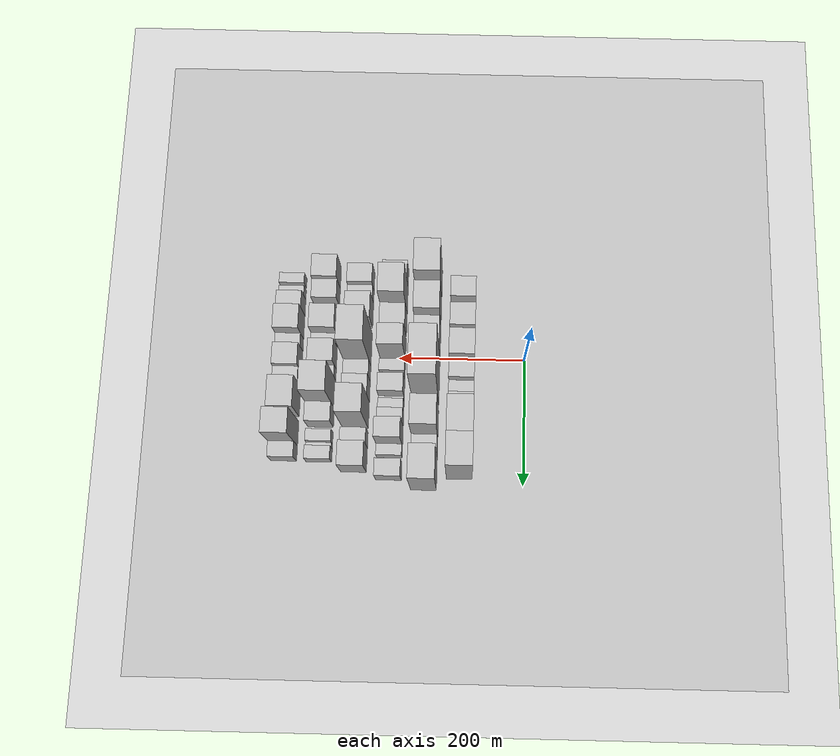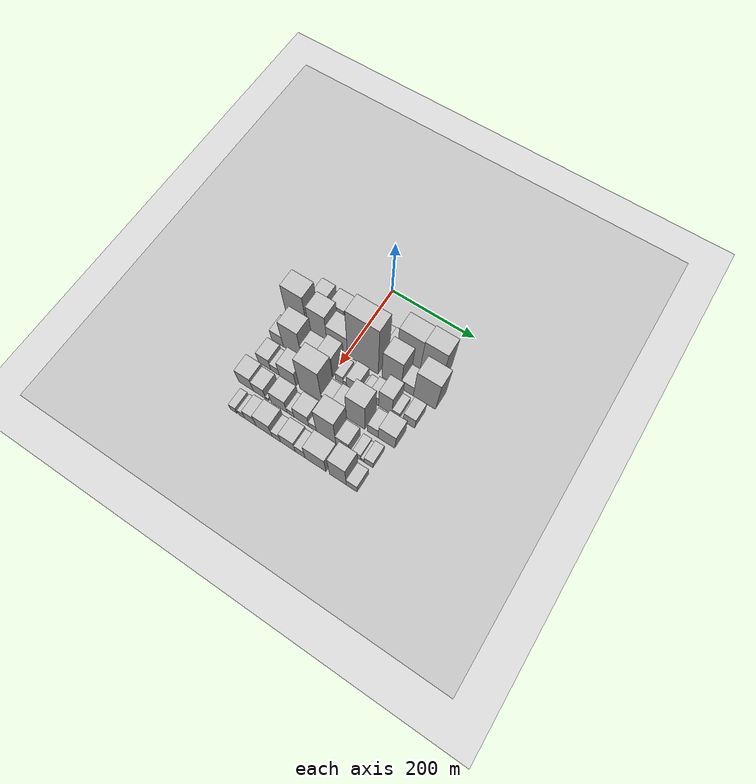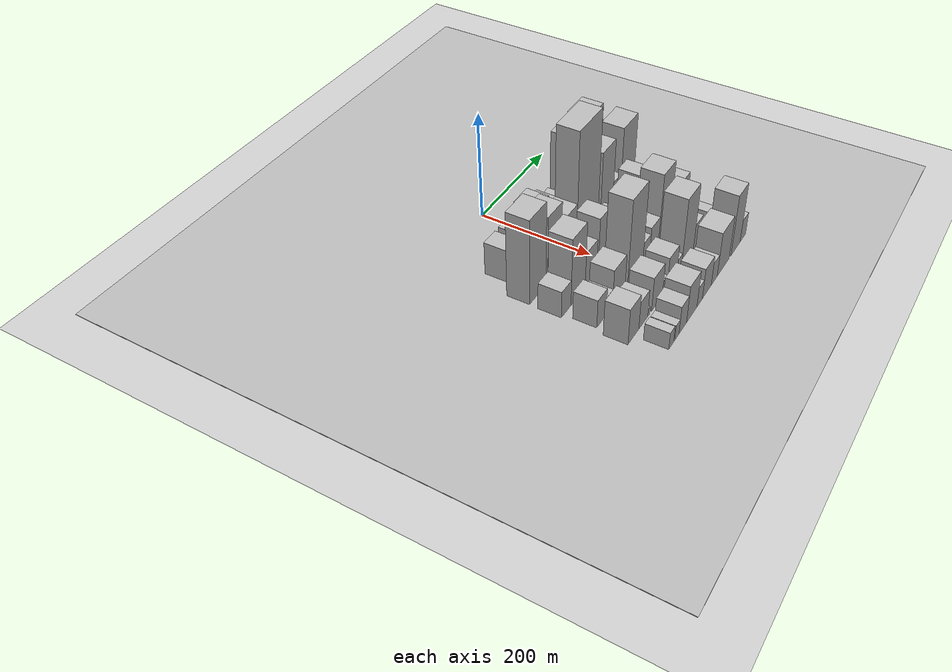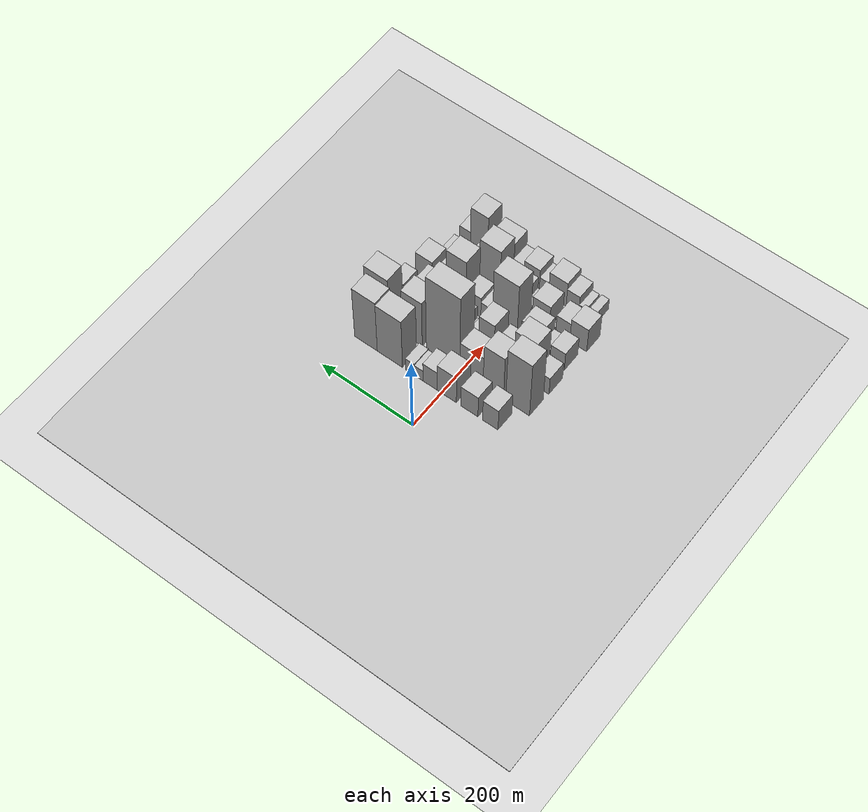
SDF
<sdf version="1.6">
 <world name="default">
  <include><name>ground_plane_1</name><uri>model://HANNAS_ground_plane</uri></include>
  <include>
   <name>ground_plane_2</name>
   <uri>model://HANNAS_ground_plane</uri>
   <pose>100 0 0  0 0 0</pose>
  </include>
  <model name="building_19">
   <static>1</static>
   <pose>100.0000 -104.4005 0 0.000000 0.000000 0.000000</pose>
   <link name="link">
    <pose>0 0 31.50 0 0 0</pose>
    <collision name="collision"><geometry><box><size>40.0000 32.8574 63.0000</size></box></geometry></collision>
    <visual name="visual">
     <cast_shadows>0</cast_shadows>
     <geometry><box><size>40.0000 32.8574 63.0000</size></box></geometry>
     <material>
      <script>
       <uri>model://HANNAS_wall/materials/scripts</uri>
       <uri>model://HANNAS_wall/materials/textures</uri>
       <name>vrc/HANNAS_wall</name>
      </script>
     </material>
    </visual>
   </link>
  </model>
  <model name="building_20">
   <static>1</static>
   <pose>100.0000 -59.7852 0 0.000000 0.000000 0.000000</pose>
   <link name="link">
    <pose>0 0 31.50 0 0 0</pose>
    <collision name="collision"><geometry><box><size>40.0000 36.3732 63.0000</size></box></geometry></collision>
    <visual name="visual">
     <cast_shadows>0</cast_shadows>
     <geometry><box><size>40.0000 36.3732 63.0000</size></box></geometry>
     <material>
      <script>
       <uri>model://HANNAS_wall/materials/scripts</uri>
       <uri>model://HANNAS_wall/materials/textures</uri>
       <name>vrc/HANNAS_wall</name>
      </script>
     </material>
    </visual>
   </link>
  </model>
  <model name="building_21">
   <static>1</static>
   <pose>100.0000 -11.1087 0 0.000000 0.000000 0.000000</pose>
   <link name="link">
    <pose>0 0 40.50 0 0 0</pose>
    <collision name="collision"><geometry><box><size>40.0000 40.9799 81.0000</size></box></geometry></collision>
    <visual name="visual">
     <cast_shadows>0</cast_shadows>
     <geometry><box><size>40.0000 40.9799 81.0000</size></box></geometry>
     <material>
      <script>
       <uri>model://HANNAS_wall/materials/scripts</uri>
       <uri>model://HANNAS_wall/materials/textures</uri>
       <name>vrc/HANNAS_wall</name>
      </script>
     </material>
    </visual>
   </link>
  </model>
  <model name="building_22">
   <static>1</static>
   <pose>100.0000 24.9783 0 0.000000 0.000000 0.000000</pose>
   <link name="link">
    <pose>0 0 28.50 0 0 0</pose>
    <collision name="collision"><geometry><box><size>40.0000 31.1941 57.0000</size></box></geometry></collision>
    <visual name="visual">
     <cast_shadows>0</cast_shadows>
     <geometry><box><size>40.0000 31.1941 57.0000</size></box></geometry>
     <material>
      <script>
       <uri>model://HANNAS_wall/materials/scripts</uri>
       <uri>model://HANNAS_wall/materials/textures</uri>
       <name>vrc/HANNAS_wall</name>
      </script>
     </material>
    </visual>
   </link>
  </model>
  <model name="building_23">
   <static>1</static>
   <pose>100.0000 49.8921 0 0.000000 0.000000 0.000000</pose>
   <link name="link">
    <pose>0 0 16.50 0 0 0</pose>
    <collision name="collision"><geometry><box><size>40.0000 18.6336 33.0000</size></box></geometry></collision>
    <visual name="visual">
     <cast_shadows>0</cast_shadows>
     <geometry><box><size>40.0000 18.6336 33.0000</size></box></geometry>
     <material>
      <script>
       <uri>model://HANNAS_wall/materials/scripts</uri>
       <uri>model://HANNAS_wall/materials/textures</uri>
       <name>vrc/HANNAS_wall</name>
      </script>
     </material>
    </visual>
   </link>
  </model>
  <model name="building_24">
   <static>1</static>
   <pose>100.0000 68.9714 0 0.000000 0.000000 0.000000</pose>
   <link name="link">
    <pose>0 0 18.00 0 0 0</pose>
    <collision name="collision"><geometry><box><size>40.0000 19.5249 36.0000</size></box></geometry></collision>
    <visual name="visual">
     <cast_shadows>0</cast_shadows>
     <geometry><box><size>40.0000 19.5249 36.0000</size></box></geometry>
     <material>
      <script>
       <uri>model://HANNAS_wall/materials/scripts</uri>
       <uri>model://HANNAS_wall/materials/textures</uri>
       <name>vrc/HANNAS_wall</name>
      </script>
     </material>
    </visual>
   </link>
  </model>
  <model name="building_25">
   <static>1</static>
   <pose>100.0000 113.5776 0 0.000000 0.000000 0.000000</pose>
   <link name="link">
    <pose>0 0 72.00 0 0 0</pose>
    <collision name="collision"><geometry><box><size>40.0000 55.6874 144.0000</size></box></geometry></collision>
    <visual name="visual">
     <cast_shadows>0</cast_shadows>
     <geometry><box><size>40.0000 55.6874 144.0000</size></box></geometry>
     <material>
      <script>
       <uri>model://HANNAS_wall/materials/scripts</uri>
       <uri>model://HANNAS_wall/materials/textures</uri>
       <name>vrc/HANNAS_wall</name>
      </script>
     </material>
    </visual>
   </link>
  </model>
  <model name="building_26">
   <static>1</static>
   <pose>100.0000 166.6663 0 0.000000 0.000000 0.000000</pose>
   <link name="link">
    <pose>0 0 75.00 0 0 0</pose>
    <collision name="collision"><geometry><box><size>40.0000 50.4901 150.0000</size></box></geometry></collision>
    <visual name="visual">
     <cast_shadows>0</cast_shadows>
     <geometry><box><size>40.0000 50.4901 150.0000</size></box></geometry>
     <material>
      <script>
       <uri>model://HANNAS_wall/materials/scripts</uri>
       <uri>model://HANNAS_wall/materials/textures</uri>
       <name>vrc/HANNAS_wall</name>
      </script>
     </material>
    </visual>
   </link>
  </model>
  <model name="building_67">
   <static>1</static>
   <pose>155.0000 -121.8939 0 0.000000 0.000000 0.000000</pose>
   <link name="link">
    <pose>0 0 81.00 0 0 0</pose>
    <collision name="collision"><geometry><box><size>40.0000 50.4735 162.0000</size></box></geometry></collision>
    <visual name="visual">
     <cast_shadows>0</cast_shadows>
     <geometry><box><size>40.0000 50.4735 162.0000</size></box></geometry>
     <material>
      <script>
       <uri>model://HANNAS_wall/materials/scripts</uri>
       <uri>model://HANNAS_wall/materials/textures</uri>
       <name>vrc/HANNAS_wall</name>
      </script>
     </material>
    </visual>
   </link>
  </model>
  <model name="building_68">
   <static>1</static>
   <pose>155.0000 -69.8551 0 0.000000 0.000000 0.000000</pose>
   <link name="link">
    <pose>0 0 64.50 0 0 0</pose>
    <collision name="collision"><geometry><box><size>40.0000 43.6041 129.0000</size></box></geometry></collision>
    <visual name="visual">
     <cast_shadows>0</cast_shadows>
     <geometry><box><size>40.0000 43.6041 129.0000</size></box></geometry>
     <material>
      <script>
       <uri>model://HANNAS_wall/materials/scripts</uri>
       <uri>model://HANNAS_wall/materials/textures</uri>
       <name>vrc/HANNAS_wall</name>
      </script>
     </material>
    </visual>
   </link>
  </model>
  <model name="building_69">
   <static>1</static>
   <pose>155.0000 -23.0017 0 0.000000 0.000000 0.000000</pose>
   <link name="link">
    <pose>0 0 45.00 0 0 0</pose>
    <collision name="collision"><geometry><box><size>40.0000 50.1027 90.0000</size></box></geometry></collision>
    <visual name="visual">
     <cast_shadows>0</cast_shadows>
     <geometry><box><size>40.0000 50.1027 90.0000</size></box></geometry>
     <material>
      <script>
       <uri>model://HANNAS_wall/materials/scripts</uri>
       <uri>model://HANNAS_wall/materials/textures</uri>
       <name>vrc/HANNAS_wall</name>
      </script>
     </material>
    </visual>
   </link>
  </model>
  <model name="building_70">
   <static>1</static>
   <pose>155.0000 38.9097 0 0.000000 0.000000 0.000000</pose>
   <link name="link">
    <pose>0 0 112.50 0 0 0</pose>
    <collision name="collision"><geometry><box><size>40.0000 73.7201 225.0000</size></box></geometry></collision>
    <visual name="visual">
     <cast_shadows>0</cast_shadows>
     <geometry><box><size>40.0000 73.7201 225.0000</size></box></geometry>
     <material>
      <script>
       <uri>model://HANNAS_wall/materials/scripts</uri>
       <uri>model://HANNAS_wall/materials/textures</uri>
       <name>vrc/HANNAS_wall</name>
      </script>
     </material>
    </visual>
   </link>
  </model>
  <model name="building_71">
   <static>1</static>
   <pose>155.0000 107.3649 0 0.000000 0.000000 0.000000</pose>
   <link name="link">
    <pose>0 0 67.50 0 0 0</pose>
    <collision name="collision"><geometry><box><size>40.0000 45.1902 135.0000</size></box></geometry></collision>
    <visual name="visual">
     <cast_shadows>0</cast_shadows>
     <geometry><box><size>40.0000 45.1902 135.0000</size></box></geometry>
     <material>
      <script>
       <uri>model://HANNAS_wall/materials/scripts</uri>
       <uri>model://HANNAS_wall/materials/textures</uri>
       <name>vrc/HANNAS_wall</name>
      </script>
     </material>
    </visual>
   </link>
  </model>
  <model name="building_72">
   <static>1</static>
   <pose>155.0000 144.3162 0 0.000000 0.000000 0.000000</pose>
   <link name="link">
    <pose>0 0 24.00 0 0 0</pose>
    <collision name="collision"><geometry><box><size>40.0000 28.7124 48.0000</size></box></geometry></collision>
    <visual name="visual">
     <cast_shadows>0</cast_shadows>
     <geometry><box><size>40.0000 28.7124 48.0000</size></box></geometry>
     <material>
      <script>
       <uri>model://HANNAS_wall/materials/scripts</uri>
       <uri>model://HANNAS_wall/materials/textures</uri>
       <name>vrc/HANNAS_wall</name>
      </script>
     </material>
    </visual>
   </link>
  </model>
  <model name="building_73">
   <static>1</static>
   <pose>155.0000 184.5461 0 0.000000 0.000000 0.000000</pose>
   <link name="link">
    <pose>0 0 69.00 0 0 0</pose>
    <collision name="collision"><geometry><box><size>40.0000 51.7474 138.0000</size></box></geometry></collision>
    <visual name="visual">
     <cast_shadows>0</cast_shadows>
     <geometry><box><size>40.0000 51.7474 138.0000</size></box></geometry>
     <material>
      <script>
       <uri>model://HANNAS_wall/materials/scripts</uri>
       <uri>model://HANNAS_wall/materials/textures</uri>
       <name>vrc/HANNAS_wall</name>
      </script>
     </material>
    </visual>
   </link>
  </model>
  <model name="building_114">
   <static>1</static>
   <pose>210.0000 -133.5128 0 0.000000 0.000000 0.000000</pose>
   <link name="link">
    <pose>0 0 25.50 0 0 0</pose>
    <collision name="collision"><geometry><box><size>40.0000 29.8288 51.0000</size></box></geometry></collision>
    <visual name="visual">
     <cast_shadows>0</cast_shadows>
     <geometry><box><size>40.0000 29.8288 51.0000</size></box></geometry>
     <material>
      <script>
       <uri>model://HANNAS_wall/materials/scripts</uri>
       <uri>model://HANNAS_wall/materials/textures</uri>
       <name>vrc/HANNAS_wall</name>
      </script>
     </material>
    </visual>
   </link>
  </model>
  <model name="building_115">
   <static>1</static>
   <pose>210.0000 -95.7579 0 0.000000 0.000000 0.000000</pose>
   <link name="link">
    <pose>0 0 64.50 0 0 0</pose>
    <collision name="collision"><geometry><box><size>40.0000 45.6809 129.0000</size></box></geometry></collision>
    <visual name="visual">
     <cast_shadows>0</cast_shadows>
     <geometry><box><size>40.0000 45.6809 129.0000</size></box></geometry>
     <material>
      <script>
       <uri>model://HANNAS_wall/materials/scripts</uri>
       <uri>model://HANNAS_wall/materials/textures</uri>
       <name>vrc/HANNAS_wall</name>
      </script>
     </material>
    </visual>
   </link>
  </model>
  <model name="building_116">
   <static>1</static>
   <pose>210.0000 -54.0344 0 0.000000 0.000000 0.000000</pose>
   <link name="link">
    <pose>0 0 34.50 0 0 0</pose>
    <collision name="collision"><geometry><box><size>40.0000 37.7660 69.0000</size></box></geometry></collision>
    <visual name="visual">
     <cast_shadows>0</cast_shadows>
     <geometry><box><size>40.0000 37.7660 69.0000</size></box></geometry>
     <material>
      <script>
       <uri>model://HANNAS_wall/materials/scripts</uri>
       <uri>model://HANNAS_wall/materials/textures</uri>
       <name>vrc/HANNAS_wall</name>
      </script>
     </material>
    </visual>
   </link>
  </model>
  <model name="building_117">
   <static>1</static>
   <pose>210.0000 -13.5442 0 0.000000 0.000000 0.000000</pose>
   <link name="link">
    <pose>0 0 52.50 0 0 0</pose>
    <collision name="collision"><geometry><box><size>40.0000 33.2145 105.0000</size></box></geometry></collision>
    <visual name="visual">
     <cast_shadows>0</cast_shadows>
     <geometry><box><size>40.0000 33.2145 105.0000</size></box></geometry>
     <material>
      <script>
       <uri>model://HANNAS_wall/materials/scripts</uri>
       <uri>model://HANNAS_wall/materials/textures</uri>
       <name>vrc/HANNAS_wall</name>
      </script>
     </material>
    </visual>
   </link>
  </model>
  <model name="building_118">
   <static>1</static>
   <pose>210.0000 18.3803 0 0.000000 0.000000 0.000000</pose>
   <link name="link">
    <pose>0 0 18.00 0 0 0</pose>
    <collision name="collision"><geometry><box><size>40.0000 18.6345 36.0000</size></box></geometry></collision>
    <visual name="visual">
     <cast_shadows>0</cast_shadows>
     <geometry><box><size>40.0000 18.6345 36.0000</size></box></geometry>
     <material>
      <script>
       <uri>model://HANNAS_wall/materials/scripts</uri>
       <uri>model://HANNAS_wall/materials/textures</uri>
       <name>vrc/HANNAS_wall</name>
      </script>
     </material>
    </visual>
   </link>
  </model>
  <model name="building_119">
   <static>1</static>
   <pose>210.0000 31.9395 0 0.000000 0.000000 0.000000</pose>
   <link name="link">
    <pose>0 0 10.50 0 0 0</pose>
    <collision name="collision"><geometry><box><size>40.0000 8.4840 21.0000</size></box></geometry></collision>
    <visual name="visual">
     <cast_shadows>0</cast_shadows>
     <geometry><box><size>40.0000 8.4840 21.0000</size></box></geometry>
     <material>
      <script>
       <uri>model://HANNAS_wall/materials/scripts</uri>
       <uri>model://HANNAS_wall/materials/textures</uri>
       <name>vrc/HANNAS_wall</name>
      </script>
     </material>
    </visual>
   </link>
  </model>
  <model name="building_120">
   <static>1</static>
   <pose>210.0000 50.5265 0 0.000000 0.000000 0.000000</pose>
   <link name="link">
    <pose>0 0 28.50 0 0 0</pose>
    <collision name="collision"><geometry><box><size>40.0000 28.6899 57.0000</size></box></geometry></collision>
    <visual name="visual">
     <cast_shadows>0</cast_shadows>
     <geometry><box><size>40.0000 28.6899 57.0000</size></box></geometry>
     <material>
      <script>
       <uri>model://HANNAS_wall/materials/scripts</uri>
       <uri>model://HANNAS_wall/materials/textures</uri>
       <name>vrc/HANNAS_wall</name>
      </script>
     </material>
    </visual>
   </link>
  </model>
  <model name="building_121">
   <static>1</static>
   <pose>210.0000 67.8872 0 0.000000 0.000000 0.000000</pose>
   <link name="link">
    <pose>0 0 7.50 0 0 0</pose>
    <collision name="collision"><geometry><box><size>40.0000 6.0315 15.0000</size></box></geometry></collision>
    <visual name="visual">
     <cast_shadows>0</cast_shadows>
     <geometry><box><size>40.0000 6.0315 15.0000</size></box></geometry>
     <material>
      <script>
       <uri>model://HANNAS_wall/materials/scripts</uri>
       <uri>model://HANNAS_wall/materials/textures</uri>
       <name>vrc/HANNAS_wall</name>
      </script>
     </material>
    </visual>
   </link>
  </model>
  <model name="building_122">
   <static>1</static>
   <pose>210.0000 79.7839 0 0.000000 0.000000 0.000000</pose>
   <link name="link">
    <pose>0 0 15.00 0 0 0</pose>
    <collision name="collision"><geometry><box><size>40.0000 17.7620 30.0000</size></box></geometry></collision>
    <visual name="visual">
     <cast_shadows>0</cast_shadows>
     <geometry><box><size>40.0000 17.7620 30.0000</size></box></geometry>
     <material>
      <script>
       <uri>model://HANNAS_wall/materials/scripts</uri>
       <uri>model://HANNAS_wall/materials/textures</uri>
       <name>vrc/HANNAS_wall</name>
      </script>
     </material>
    </visual>
   </link>
  </model>
  <model name="building_123">
   <static>1</static>
   <pose>210.0000 100.3400 0 0.000000 0.000000 0.000000</pose>
   <link name="link">
    <pose>0 0 22.50 0 0 0</pose>
    <collision name="collision"><geometry><box><size>40.0000 23.3502 45.0000</size></box></geometry></collision>
    <visual name="visual">
     <cast_shadows>0</cast_shadows>
     <geometry><box><size>40.0000 23.3502 45.0000</size></box></geometry>
     <material>
      <script>
       <uri>model://HANNAS_wall/materials/scripts</uri>
       <uri>model://HANNAS_wall/materials/textures</uri>
       <name>vrc/HANNAS_wall</name>
      </script>
     </material>
    </visual>
   </link>
  </model>
  <model name="building_124">
   <static>1</static>
   <pose>210.0000 127.5048 0 0.000000 0.000000 0.000000</pose>
   <link name="link">
    <pose>0 0 46.50 0 0 0</pose>
    <collision name="collision"><geometry><box><size>40.0000 30.9794 93.0000</size></box></geometry></collision>
    <visual name="visual">
     <cast_shadows>0</cast_shadows>
     <geometry><box><size>40.0000 30.9794 93.0000</size></box></geometry>
     <material>
      <script>
       <uri>model://HANNAS_wall/materials/scripts</uri>
       <uri>model://HANNAS_wall/materials/textures</uri>
       <name>vrc/HANNAS_wall</name>
      </script>
     </material>
    </visual>
   </link>
  </model>
  <model name="building_125">
   <static>1</static>
   <pose>210.0000 151.8502 0 0.000000 0.000000 0.000000</pose>
   <link name="link">
    <pose>0 0 15.00 0 0 0</pose>
    <collision name="collision"><geometry><box><size>40.0000 17.7114 30.0000</size></box></geometry></collision>
    <visual name="visual">
     <cast_shadows>0</cast_shadows>
     <geometry><box><size>40.0000 17.7114 30.0000</size></box></geometry>
     <material>
      <script>
       <uri>model://HANNAS_wall/materials/scripts</uri>
       <uri>model://HANNAS_wall/materials/textures</uri>
       <name>vrc/HANNAS_wall</name>
      </script>
     </material>
    </visual>
   </link>
  </model>
  <model name="building_126">
   <static>1</static>
   <pose>210.0000 182.2694 0 0.000000 0.000000 0.000000</pose>
   <link name="link">
    <pose>0 0 25.50 0 0 0</pose>
    <collision name="collision"><geometry><box><size>40.0000 27.1270 51.0000</size></box></geometry></collision>
    <visual name="visual">
     <cast_shadows>0</cast_shadows>
     <geometry><box><size>40.0000 27.1270 51.0000</size></box></geometry>
     <material>
      <script>
       <uri>model://HANNAS_wall/materials/scripts</uri>
       <uri>model://HANNAS_wall/materials/textures</uri>
       <name>vrc/HANNAS_wall</name>
      </script>
     </material>
    </visual>
   </link>
  </model>
  <model name="building_168">
   <static>1</static>
   <pose>265.0000 -126.0149 0 0.000000 0.000000 0.000000</pose>
   <link name="link">
    <pose>0 0 27.00 0 0 0</pose>
    <collision name="collision"><geometry><box><size>40.0000 30.6144 54.0000</size></box></geometry></collision>
    <visual name="visual">
     <cast_shadows>0</cast_shadows>
     <geometry><box><size>40.0000 30.6144 54.0000</size></box></geometry>
     <material>
      <script>
       <uri>model://HANNAS_wall/materials/scripts</uri>
       <uri>model://HANNAS_wall/materials/textures</uri>
       <name>vrc/HANNAS_wall</name>
      </script>
     </material>
    </visual>
   </link>
  </model>
  <model name="building_169">
   <static>1</static>
   <pose>265.0000 -100.2564 0 0.000000 0.000000 0.000000</pose>
   <link name="link">
    <pose>0 0 18.00 0 0 0</pose>
    <collision name="collision"><geometry><box><size>40.0000 20.9024 36.0000</size></box></geometry></collision>
    <visual name="visual">
     <cast_shadows>0</cast_shadows>
     <geometry><box><size>40.0000 20.9024 36.0000</size></box></geometry>
     <material>
      <script>
       <uri>model://HANNAS_wall/materials/scripts</uri>
       <uri>model://HANNAS_wall/materials/textures</uri>
       <name>vrc/HANNAS_wall</name>
      </script>
     </material>
    </visual>
   </link>
  </model>
  <model name="building_170">
   <static>1</static>
   <pose>265.0000 -69.0032 0 0.000000 0.000000 0.000000</pose>
   <link name="link">
    <pose>0 0 36.00 0 0 0</pose>
    <collision name="collision"><geometry><box><size>40.0000 41.6040 72.0000</size></box></geometry></collision>
    <visual name="visual">
     <cast_shadows>0</cast_shadows>
     <geometry><box><size>40.0000 41.6040 72.0000</size></box></geometry>
     <material>
      <script>
       <uri>model://HANNAS_wall/materials/scripts</uri>
       <uri>model://HANNAS_wall/materials/textures</uri>
       <name>vrc/HANNAS_wall</name>
      </script>
     </material>
    </visual>
   </link>
  </model>
  <model name="building_171">
   <static>1</static>
   <pose>265.0000 -12.5805 0 0.000000 0.000000 0.000000</pose>
   <link name="link">
    <pose>0 0 84.00 0 0 0</pose>
    <collision name="collision"><geometry><box><size>40.0000 53.2415 168.0000</size></box></geometry></collision>
    <visual name="visual">
     <cast_shadows>0</cast_shadows>
     <geometry><box><size>40.0000 53.2415 168.0000</size></box></geometry>
     <material>
      <script>
       <uri>model://HANNAS_wall/materials/scripts</uri>
       <uri>model://HANNAS_wall/materials/textures</uri>
       <name>vrc/HANNAS_wall</name>
      </script>
     </material>
    </visual>
   </link>
  </model>
  <model name="building_172">
   <static>1</static>
   <pose>265.0000 26.8757 0 0.000000 0.000000 0.000000</pose>
   <link name="link">
    <pose>0 0 24.00 0 0 0</pose>
    <collision name="collision"><geometry><box><size>40.0000 25.6709 48.0000</size></box></geometry></collision>
    <visual name="visual">
     <cast_shadows>0</cast_shadows>
     <geometry><box><size>40.0000 25.6709 48.0000</size></box></geometry>
     <material>
      <script>
       <uri>model://HANNAS_wall/materials/scripts</uri>
       <uri>model://HANNAS_wall/materials/textures</uri>
       <name>vrc/HANNAS_wall</name>
      </script>
     </material>
    </visual>
   </link>
  </model>
  <model name="building_173">
   <static>1</static>
   <pose>265.0000 56.0474 0 0.000000 0.000000 0.000000</pose>
   <link name="link">
    <pose>0 0 30.00 0 0 0</pose>
    <collision name="collision"><geometry><box><size>40.0000 32.6725 60.0000</size></box></geometry></collision>
    <visual name="visual">
     <cast_shadows>0</cast_shadows>
     <geometry><box><size>40.0000 32.6725 60.0000</size></box></geometry>
     <material>
      <script>
       <uri>model://HANNAS_wall/materials/scripts</uri>
       <uri>model://HANNAS_wall/materials/textures</uri>
       <name>vrc/HANNAS_wall</name>
      </script>
     </material>
    </visual>
   </link>
  </model>
  <model name="building_174">
   <static>1</static>
   <pose>265.0000 93.9438 0 0.000000 0.000000 0.000000</pose>
   <link name="link">
    <pose>0 0 70.50 0 0 0</pose>
    <collision name="collision"><geometry><box><size>40.0000 43.1202 141.0000</size></box></geometry></collision>
    <visual name="visual">
     <cast_shadows>0</cast_shadows>
     <geometry><box><size>40.0000 43.1202 141.0000</size></box></geometry>
     <material>
      <script>
       <uri>model://HANNAS_wall/materials/scripts</uri>
       <uri>model://HANNAS_wall/materials/textures</uri>
       <name>vrc/HANNAS_wall</name>
      </script>
     </material>
    </visual>
   </link>
  </model>
  <model name="building_175">
   <static>1</static>
   <pose>265.0000 133.9131 0 0.000000 0.000000 0.000000</pose>
   <link name="link">
    <pose>0 0 24.00 0 0 0</pose>
    <collision name="collision"><geometry><box><size>40.0000 24.8184 48.0000</size></box></geometry></collision>
    <visual name="visual">
     <cast_shadows>0</cast_shadows>
     <geometry><box><size>40.0000 24.8184 48.0000</size></box></geometry>
     <material>
      <script>
       <uri>model://HANNAS_wall/materials/scripts</uri>
       <uri>model://HANNAS_wall/materials/textures</uri>
       <name>vrc/HANNAS_wall</name>
      </script>
     </material>
    </visual>
   </link>
  </model>
  <model name="building_176">
   <static>1</static>
   <pose>265.0000 165.4641 0 0.000000 0.000000 0.000000</pose>
   <link name="link">
    <pose>0 0 37.50 0 0 0</pose>
    <collision name="collision"><geometry><box><size>40.0000 38.2837 75.0000</size></box></geometry></collision>
    <visual name="visual">
     <cast_shadows>0</cast_shadows>
     <geometry><box><size>40.0000 38.2837 75.0000</size></box></geometry>
     <material>
      <script>
       <uri>model://HANNAS_wall/materials/scripts</uri>
       <uri>model://HANNAS_wall/materials/textures</uri>
       <name>vrc/HANNAS_wall</name>
      </script>
     </material>
    </visual>
   </link>
  </model>
  <model name="building_216">
   <static>1</static>
   <pose>320.0000 -131.8449 0 0.000000 0.000000 0.000000</pose>
   <link name="link">
    <pose>0 0 34.50 0 0 0</pose>
    <collision name="collision"><geometry><box><size>40.0000 36.0616 69.0000</size></box></geometry></collision>
    <visual name="visual">
     <cast_shadows>0</cast_shadows>
     <geometry><box><size>40.0000 36.0616 69.0000</size></box></geometry>
     <material>
      <script>
       <uri>model://HANNAS_wall/materials/scripts</uri>
       <uri>model://HANNAS_wall/materials/textures</uri>
       <name>vrc/HANNAS_wall</name>
      </script>
     </material>
    </visual>
   </link>
  </model>
  <model name="building_217">
   <static>1</static>
   <pose>320.0000 -98.5864 0 0.000000 0.000000 0.000000</pose>
   <link name="link">
    <pose>0 0 27.00 0 0 0</pose>
    <collision name="collision"><geometry><box><size>40.0000 30.4554 54.0000</size></box></geometry></collision>
    <visual name="visual">
     <cast_shadows>0</cast_shadows>
     <geometry><box><size>40.0000 30.4554 54.0000</size></box></geometry>
     <material>
      <script>
       <uri>model://HANNAS_wall/materials/scripts</uri>
       <uri>model://HANNAS_wall/materials/textures</uri>
       <name>vrc/HANNAS_wall</name>
      </script>
     </material>
    </visual>
   </link>
  </model>
  <model name="building_218">
   <static>1</static>
   <pose>320.0000 -79.6776 0 0.000000 0.000000 0.000000</pose>
   <link name="link">
    <pose>0 0 7.50 0 0 0</pose>
    <collision name="collision"><geometry><box><size>40.0000 7.3622 15.0000</size></box></geometry></collision>
    <visual name="visual">
     <cast_shadows>0</cast_shadows>
     <geometry><box><size>40.0000 7.3622 15.0000</size></box></geometry>
     <material>
      <script>
       <uri>model://HANNAS_wall/materials/scripts</uri>
       <uri>model://HANNAS_wall/materials/textures</uri>
       <name>vrc/HANNAS_wall</name>
      </script>
     </material>
    </visual>
   </link>
  </model>
  <model name="building_219">
   <static>1</static>
   <pose>320.0000 -50.9044 0 0.000000 0.000000 0.000000</pose>
   <link name="link">
    <pose>0 0 33.00 0 0 0</pose>
    <collision name="collision"><geometry><box><size>40.0000 38.1842 66.0000</size></box></geometry></collision>
    <visual name="visual">
     <cast_shadows>0</cast_shadows>
     <geometry><box><size>40.0000 38.1842 66.0000</size></box></geometry>
     <material>
      <script>
       <uri>model://HANNAS_wall/materials/scripts</uri>
       <uri>model://HANNAS_wall/materials/textures</uri>
       <name>vrc/HANNAS_wall</name>
      </script>
     </material>
    </visual>
   </link>
  </model>
  <model name="building_220">
   <static>1</static>
   <pose>320.0000 -23.2697 0 0.000000 0.000000 0.000000</pose>
   <link name="link">
    <pose>0 0 15.00 0 0 0</pose>
    <collision name="collision"><geometry><box><size>40.0000 17.0852 30.0000</size></box></geometry></collision>
    <visual name="visual">
     <cast_shadows>0</cast_shadows>
     <geometry><box><size>40.0000 17.0852 30.0000</size></box></geometry>
     <material>
      <script>
       <uri>model://HANNAS_wall/materials/scripts</uri>
       <uri>model://HANNAS_wall/materials/textures</uri>
       <name>vrc/HANNAS_wall</name>
      </script>
     </material>
    </visual>
   </link>
  </model>
  <model name="building_221">
   <static>1</static>
   <pose>320.0000 3.0371 0 0.000000 0.000000 0.000000</pose>
   <link name="link">
    <pose>0 0 31.50 0 0 0</pose>
    <collision name="collision"><geometry><box><size>40.0000 35.5283 63.0000</size></box></geometry></collision>
    <visual name="visual">
     <cast_shadows>0</cast_shadows>
     <geometry><box><size>40.0000 35.5283 63.0000</size></box></geometry>
     <material>
      <script>
       <uri>model://HANNAS_wall/materials/scripts</uri>
       <uri>model://HANNAS_wall/materials/textures</uri>
       <name>vrc/HANNAS_wall</name>
      </script>
     </material>
    </visual>
   </link>
  </model>
  <model name="building_222">
   <static>1</static>
   <pose>320.0000 29.7980 0 0.000000 0.000000 0.000000</pose>
   <link name="link">
    <pose>0 0 16.50 0 0 0</pose>
    <collision name="collision"><geometry><box><size>40.0000 17.9934 33.0000</size></box></geometry></collision>
    <visual name="visual">
     <cast_shadows>0</cast_shadows>
     <geometry><box><size>40.0000 17.9934 33.0000</size></box></geometry>
     <material>
      <script>
       <uri>model://HANNAS_wall/materials/scripts</uri>
       <uri>model://HANNAS_wall/materials/textures</uri>
       <name>vrc/HANNAS_wall</name>
      </script>
     </material>
    </visual>
   </link>
  </model>
  <model name="building_223">
   <static>1</static>
   <pose>320.0000 61.4986 0 0.000000 0.000000 0.000000</pose>
   <link name="link">
    <pose>0 0 69.00 0 0 0</pose>
    <collision name="collision"><geometry><box><size>40.0000 45.4077 138.0000</size></box></geometry></collision>
    <visual name="visual">
     <cast_shadows>0</cast_shadows>
     <geometry><box><size>40.0000 45.4077 138.0000</size></box></geometry>
     <material>
      <script>
       <uri>model://HANNAS_wall/materials/scripts</uri>
       <uri>model://HANNAS_wall/materials/textures</uri>
       <name>vrc/HANNAS_wall</name>
      </script>
     </material>
    </visual>
   </link>
  </model>
  <model name="building_224">
   <static>1</static>
   <pose>320.0000 99.4336 0 0.000000 0.000000 0.000000</pose>
   <link name="link">
    <pose>0 0 28.50 0 0 0</pose>
    <collision name="collision"><geometry><box><size>40.0000 30.4624 57.0000</size></box></geometry></collision>
    <visual name="visual">
     <cast_shadows>0</cast_shadows>
     <geometry><box><size>40.0000 30.4624 57.0000</size></box></geometry>
     <material>
      <script>
       <uri>model://HANNAS_wall/materials/scripts</uri>
       <uri>model://HANNAS_wall/materials/textures</uri>
       <name>vrc/HANNAS_wall</name>
      </script>
     </material>
    </visual>
   </link>
  </model>
  <model name="building_225">
   <static>1</static>
   <pose>320.0000 132.0728 0 0.000000 0.000000 0.000000</pose>
   <link name="link">
    <pose>0 0 16.50 0 0 0</pose>
    <collision name="collision"><geometry><box><size>40.0000 18.8159 33.0000</size></box></geometry></collision>
    <visual name="visual">
     <cast_shadows>0</cast_shadows>
     <geometry><box><size>40.0000 18.8159 33.0000</size></box></geometry>
     <material>
      <script>
       <uri>model://HANNAS_wall/materials/scripts</uri>
       <uri>model://HANNAS_wall/materials/textures</uri>
       <name>vrc/HANNAS_wall</name>
      </script>
     </material>
    </visual>
   </link>
  </model>
  <model name="building_226">
   <static>1</static>
   <pose>320.0000 145.2873 0 0.000000 0.000000 0.000000</pose>
   <link name="link">
    <pose>0 0 9.00 0 0 0</pose>
    <collision name="collision"><geometry><box><size>40.0000 7.6131 18.0000</size></box></geometry></collision>
    <visual name="visual">
     <cast_shadows>0</cast_shadows>
     <geometry><box><size>40.0000 7.6131 18.0000</size></box></geometry>
     <material>
      <script>
       <uri>model://HANNAS_wall/materials/scripts</uri>
       <uri>model://HANNAS_wall/materials/textures</uri>
       <name>vrc/HANNAS_wall</name>
      </script>
     </material>
    </visual>
   </link>
  </model>
  <model name="building_227">
   <static>1</static>
   <pose>320.0000 159.4830 0 0.000000 0.000000 0.000000</pose>
   <link name="link">
    <pose>0 0 18.00 0 0 0</pose>
    <collision name="collision"><geometry><box><size>40.0000 20.7784 36.0000</size></box></geometry></collision>
    <visual name="visual">
     <cast_shadows>0</cast_shadows>
     <geometry><box><size>40.0000 20.7784 36.0000</size></box></geometry>
     <material>
      <script>
       <uri>model://HANNAS_wall/materials/scripts</uri>
       <uri>model://HANNAS_wall/materials/textures</uri>
       <name>vrc/HANNAS_wall</name>
      </script>
     </material>
    </visual>
   </link>
  </model>
  <model name="building_272">
   <static>1</static>
   <pose>375.0000 -121.2010 0 0.000000 0.000000 0.000000</pose>
   <link name="link">
    <pose>0 0 16.50 0 0 0</pose>
    <collision name="collision"><geometry><box><size>40.0000 16.5195 33.0000</size></box></geometry></collision>
    <visual name="visual">
     <cast_shadows>0</cast_shadows>
     <geometry><box><size>40.0000 16.5195 33.0000</size></box></geometry>
     <material>
      <script>
       <uri>model://HANNAS_wall/materials/scripts</uri>
       <uri>model://HANNAS_wall/materials/textures</uri>
       <name>vrc/HANNAS_wall</name>
      </script>
     </material>
    </visual>
   </link>
  </model>
  <model name="building_273">
   <static>1</static>
   <pose>375.0000 -101.3095 0 0.000000 0.000000 0.000000</pose>
   <link name="link">
    <pose>0 0 15.00 0 0 0</pose>
    <collision name="collision"><geometry><box><size>40.0000 15.2636 30.0000</size></box></geometry></collision>
    <visual name="visual">
     <cast_shadows>0</cast_shadows>
     <geometry><box><size>40.0000 15.2636 30.0000</size></box></geometry>
     <material>
      <script>
       <uri>model://HANNAS_wall/materials/scripts</uri>
       <uri>model://HANNAS_wall/materials/textures</uri>
       <name>vrc/HANNAS_wall</name>
      </script>
     </material>
    </visual>
   </link>
  </model>
  <model name="building_274">
   <static>1</static>
   <pose>375.0000 -80.0549 0 0.000000 0.000000 0.000000</pose>
   <link name="link">
    <pose>0 0 27.00 0 0 0</pose>
    <collision name="collision"><geometry><box><size>40.0000 27.2455 54.0000</size></box></geometry></collision>
    <visual name="visual">
     <cast_shadows>0</cast_shadows>
     <geometry><box><size>40.0000 27.2455 54.0000</size></box></geometry>
     <material>
      <script>
       <uri>model://HANNAS_wall/materials/scripts</uri>
       <uri>model://HANNAS_wall/materials/textures</uri>
       <name>vrc/HANNAS_wall</name>
      </script>
     </material>
    </visual>
   </link>
  </model>
  <model name="building_275">
   <static>1</static>
   <pose>375.0000 -47.1867 0 0.000000 0.000000 0.000000</pose>
   <link name="link">
    <pose>0 0 36.00 0 0 0</pose>
    <collision name="collision"><geometry><box><size>40.0000 38.4909 72.0000</size></box></geometry></collision>
    <visual name="visual">
     <cast_shadows>0</cast_shadows>
     <geometry><box><size>40.0000 38.4909 72.0000</size></box></geometry>
     <material>
      <script>
       <uri>model://HANNAS_wall/materials/scripts</uri>
       <uri>model://HANNAS_wall/materials/textures</uri>
       <name>vrc/HANNAS_wall</name>
      </script>
     </material>
    </visual>
   </link>
  </model>
  <model name="building_276">
   <static>1</static>
   <pose>375.0000 -17.8157 0 0.000000 0.000000 0.000000</pose>
   <link name="link">
    <pose>0 0 19.50 0 0 0</pose>
    <collision name="collision"><geometry><box><size>40.0000 20.2511 39.0000</size></box></geometry></collision>
    <visual name="visual">
     <cast_shadows>0</cast_shadows>
     <geometry><box><size>40.0000 20.2511 39.0000</size></box></geometry>
     <material>
      <script>
       <uri>model://HANNAS_wall/materials/scripts</uri>
       <uri>model://HANNAS_wall/materials/textures</uri>
       <name>vrc/HANNAS_wall</name>
      </script>
     </material>
    </visual>
   </link>
  </model>
  <model name="building_277">
   <static>1</static>
   <pose>375.0000 9.5676 0 0.000000 0.000000 0.000000</pose>
   <link name="link">
    <pose>0 0 30.00 0 0 0</pose>
    <collision name="collision"><geometry><box><size>40.0000 34.5155 60.0000</size></box></geometry></collision>
    <visual name="visual">
     <cast_shadows>0</cast_shadows>
     <geometry><box><size>40.0000 34.5155 60.0000</size></box></geometry>
     <material>
      <script>
       <uri>model://HANNAS_wall/materials/scripts</uri>
       <uri>model://HANNAS_wall/materials/textures</uri>
       <name>vrc/HANNAS_wall</name>
      </script>
     </material>
    </visual>
   </link>
  </model>
  <model name="building_278">
   <static>1</static>
   <pose>375.0000 38.5461 0 0.000000 0.000000 0.000000</pose>
   <link name="link">
    <pose>0 0 22.50 0 0 0</pose>
    <collision name="collision"><geometry><box><size>40.0000 23.4415 45.0000</size></box></geometry></collision>
    <visual name="visual">
     <cast_shadows>0</cast_shadows>
     <geometry><box><size>40.0000 23.4415 45.0000</size></box></geometry>
     <material>
      <script>
       <uri>model://HANNAS_wall/materials/scripts</uri>
       <uri>model://HANNAS_wall/materials/textures</uri>
       <name>vrc/HANNAS_wall</name>
      </script>
     </material>
    </visual>
   </link>
  </model>
  <model name="building_279">
   <static>1</static>
   <pose>375.0000 74.3995 0 0.000000 0.000000 0.000000</pose>
   <link name="link">
    <pose>0 0 43.50 0 0 0</pose>
    <collision name="collision"><geometry><box><size>40.0000 48.2653 87.0000</size></box></geometry></collision>
    <visual name="visual">
     <cast_shadows>0</cast_shadows>
     <geometry><box><size>40.0000 48.2653 87.0000</size></box></geometry>
     <material>
      <script>
       <uri>model://HANNAS_wall/materials/scripts</uri>
       <uri>model://HANNAS_wall/materials/textures</uri>
       <name>vrc/HANNAS_wall</name>
      </script>
     </material>
    </visual>
   </link>
  </model>
  <model name="building_280">
   <static>1</static>
   <pose>375.0000 125.8167 0 0.000000 0.000000 0.000000</pose>
   <link name="link">
    <pose>0 0 60.00 0 0 0</pose>
    <collision name="collision"><geometry><box><size>40.0000 38.5692 120.0000</size></box></geometry></collision>
    <visual name="visual">
     <cast_shadows>0</cast_shadows>
     <geometry><box><size>40.0000 38.5692 120.0000</size></box></geometry>
     <material>
      <script>
       <uri>model://HANNAS_wall/materials/scripts</uri>
       <uri>model://HANNAS_wall/materials/textures</uri>
       <name>vrc/HANNAS_wall</name>
      </script>
     </material>
    </visual>
   </link>
  </model>
  <model name="building_281">
   <static>1</static>
   <pose>375.0000 157.2744 0 0.000000 0.000000 0.000000</pose>
   <link name="link">
    <pose>0 0 22.50 0 0 0</pose>
    <collision name="collision"><geometry><box><size>40.0000 24.3463 45.0000</size></box></geometry></collision>
    <visual name="visual">
     <cast_shadows>0</cast_shadows>
     <geometry><box><size>40.0000 24.3463 45.0000</size></box></geometry>
     <material>
      <script>
       <uri>model://HANNAS_wall/materials/scripts</uri>
       <uri>model://HANNAS_wall/materials/textures</uri>
       <name>vrc/HANNAS_wall</name>
      </script>
     </material>
    </visual>
   </link>
  </model>
 </world>
</sdf>
